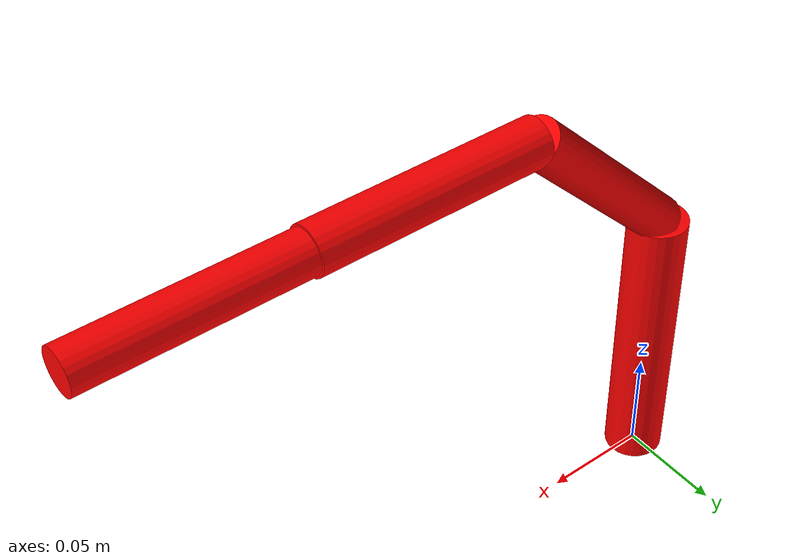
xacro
<?xml version="1.0"?>
<robot xmlns:xacro="http://www.ros.org/wiki/xacro" name="phantom_4R">
     <xacro:include filename="$(find lab3_robotica_leonardo)/urdf/my_macros.xacro"/>

     <material name="red">
          <color rgba="1.0 0.0 0.0 1.0"/>
     </material>

     <link name="world">
     </link>

     <joint name="fixed" type="fixed">
          <parent link="world"/>
          <child link="base_link"/>
     </joint>

     <link name="base_link">
     </link>

     <xacro:my_joint
     name = "joint_1"
     type = "revolute"
     origin_xyz = "0 0 0.137"
     origin_rpy = "0 0 0"
     parent = "base_link"
     child = "link_1"
     axis = "0 0 1"
     limit_l = "-3.14"
     limit_u = "3.14"
     limit_e ="10.0"
     limit_v = "0.5"
     />

     <xacro:my_link
     name= "link_1"
     origin_xyz= "0.0 0.0 -0.0685"
     origin_rpy= "0.0 0.0 0.0"
     radius= "0.0137"
     length= "0.137"
     material="red"
     />

     <xacro:my_joint
     name = "joint_2"
     type = "revolute"
     origin_xyz = "0 0 0"
     origin_rpy = "1.5708 -0.7854 0.0"
     parent = "link_1"
     child = "link_2"
     axis = "0 0 1"
     limit_l = "-3.14"
     limit_u = "3.14"
     limit_e ="10.0"
     limit_v = "0.5"
     />

     <xacro:my_link
     name= "link_2"
     origin_xyz= "0.0525 0.0 0"
     origin_rpy= "0.0 1.5708 0.0"
     radius= "0.0105"
     length= "0.105"
     material="red"
     />

     <xacro:my_joint
     name = "joint_3"
     type = "revolute"
     origin_xyz = "0.105 0.0 0.0"
     origin_rpy = "0.0 0.0 -0.7854"
     parent = "link_2"
     child = "link_3"
     axis = "0 0 1"
     limit_l = "-3.14"
     limit_u = "3.14"
     limit_e ="10.0"
     limit_v = "0.5"
     />

     <xacro:my_link
     name= "link_3"
     origin_xyz= "0.0525 0.0 0"
     origin_rpy= "0.0 1.5708 0.0"
     radius= "0.0105"
     length= "0.105"
     material="red"
     />

     <xacro:my_joint
     name = "joint_4"
     type = "revolute"
     origin_xyz = "0.105 0.0 0.0"
     origin_rpy = "0.0 0.0 0.0"
     parent = "link_3"
     child = "link_4"
     axis = "0 0 1"
     limit_l = "-3.14"
     limit_u = "3.14"
     limit_e ="10.0"
     limit_v = "0.5"
     />

     <xacro:my_link
     name= "link_4"
     origin_xyz= "0.0475 0.0 0"
     origin_rpy= "0.0 1.5708 0.0"
     radius= "0.0095"
     length= "0.095"
     material="red"
     />

     <xacro:my_joint
     name = "joint_5"
     type = "fixed"
     origin_xyz = "0.095 0.0 0.0"
     origin_rpy = "0.0 -1.5708 3.1416"
     parent = "link_4"
     child = "tool"
     axis = "0 0 1"
     limit_l = "-3.14"
     limit_u = "3.14"
     limit_e ="10.0"
     limit_v = "0.5"
     />

     <xacro:my_link
     name= "tool"
     origin_xyz= "0.0 0.0 0.0"
     origin_rpy= "0.0 0.0 0.0"
     radius= "0.0"
     length= "0.0"
     material="red"
     />

</robot>

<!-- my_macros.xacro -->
<robot xmlns:xacro="http://www.ros.org/wiki/xacro" name="robot_lab3">

    <xacro:macro name="my_joint" params="name type origin_xyz origin_rpy parent child
    axis limit_l limit_u limit_e limit_v">

        <joint name="${name}" type="${type}">
            <origin xyz="${origin_xyz}" rpy="${origin_rpy}"/>
            <parent link="${parent}"/>
            <child link="${child}"/>
            <axis xyz="${axis}"/>
            <limit lower="${limit_l}" upper="${limit_u}" effort="${limit_e}" velocity="${limit_v}"/>
        </joint>

        <transmission name="trans_${name}">
	        <type>transmission_interface/SimpleTransmission</type>
	        <joint name="${name}">
		        <hardwareInterface>hardware_interface/PositionJointInterface</hardwareInterface>
	        </joint>
	        <actuator name="motor_${name}">
		        <hardwareInterface>hardware_interface/PositionJointIn terface</hardwareInterface>
		    <mechanicalReduction>1</mechanicalReduction>
	        </actuator>
	    </transmission>

    </xacro:macro>

    <xacro:macro name="my_link" params="name origin_xyz origin_rpy radius length material">
        <link name="${name}">
            <inertial>
                <origin xyz="0.0 0.0 0.0" rpy="0.0 0.0 0.0"/>
                <mass value="1.0"/>
                <inertia ixx="0.001" ixy="0.0" ixz="0.0" iyy="0.001" iyz="0.0" izz="0.001"/>
            </inertial>
            <visual>
                <origin xyz="${origin_xyz}" rpy="${origin_rpy}"/>
                <geometry>
                    <cylinder radius="${radius}" length="${length}"/>
                </geometry>
                <material name="${material}"/>
            </visual>
            <collision>
                <origin xyz="${origin_xyz}" rpy="${origin_rpy}"/>
                <geometry>
                    <cylinder radius="${radius}" length="${length}"/>
                </geometry>
            </collision>
        </link>
    </xacro:macro>

</robot>
